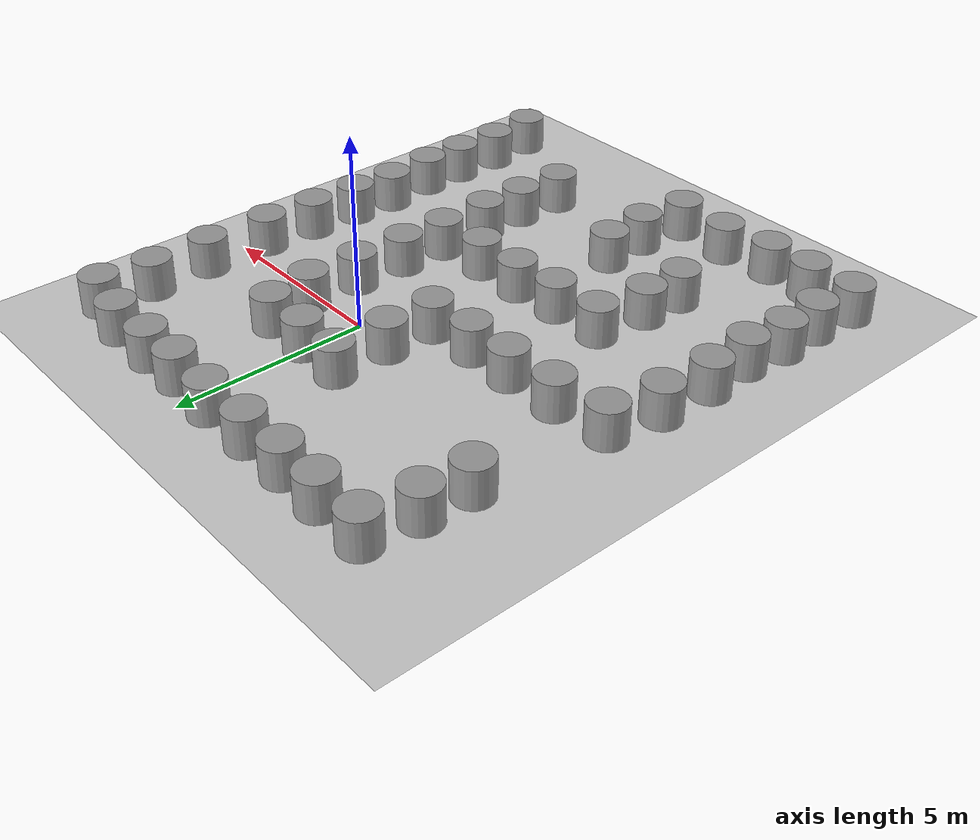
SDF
<sdf version="1.6">
 <world name="default">
  <light name="sun" type="directional">
   <pose>0 0 10 0 -0 0</pose>
   <diffuse>0.8 0.8 0.8 1</diffuse>
   <specular>0.2 0.2 0.2 1</specular>
   <attenuation>
    <range>1000</range>
    <constant>0.9</constant>
    <linear>0.01</linear>
    <quadratic>0.001</quadratic>
   </attenuation>
   <direction>-0.5 0.1 -0.9</direction>
  </light>
  <model name="ground_plane">
   <static>1</static>
   <link name="link">
    <collision name="collision">
     <geometry><plane><normal>0 0 1</normal><size>100 100</size></plane></geometry>
     <surface>
      <contact><collide_bitmask>65535</collide_bitmask></contact>
      <friction><ode><mu>100</mu><mu2>50</mu2></ode></friction>
     </surface>
    </collision>
    <visual name="visual">
     <cast_shadows>0</cast_shadows>
     <geometry><plane><normal>0 0 1</normal><size>100 100</size></plane></geometry>
     <material>
      <script><uri>file://media/materials/scripts/gazebo.material</uri><name>Gazebo/Grey</name></script>
     </material>
    </visual>
   </link>
  </model>
  <gravity>0 0 -9.8</gravity>
  <magnetic_field>6e-06 2.3e-05 -4.2e-05</magnetic_field>
  <atmosphere type="adiabatic"/>
  <physics name="default_physics" default="0" type="ode">
   <max_step_size>0.001</max_step_size>
   <real_time_factor>1</real_time_factor>
   <real_time_update_rate>1000</real_time_update_rate>
  </physics>
  <scene><ambient>0.4 0.4 0.4 1</ambient><background>0.7 0.7 0.7 1</background><shadows>1</shadows></scene>
  <spherical_coordinates>
   <surface_model>EARTH_WGS84</surface_model>
   <latitude_deg>0</latitude_deg>
   <longitude_deg>0</longitude_deg>
   <elevation>0</elevation>
   <heading_deg>0</heading_deg>
  </spherical_coordinates>
  <model name="unit_cylinder">
   <pose>0.013122 1.5859 0.499994 -4e-06 -2e-06 -0</pose>
   <link name="link">
    <inertial>
     <mass>1</mass>
     <inertia><ixx>0.145833</ixx><ixy>0</ixy><ixz>0</ixz><iyy>0.145833</iyy><iyz>0</iyz><izz>0.125</izz></inertia>
    </inertial>
    <collision name="collision">
     <geometry><cylinder><radius>0.5</radius><length>1</length></cylinder></geometry>
    </collision>
    <visual name="visual">
     <geometry><cylinder><radius>0.5</radius><length>1</length></cylinder></geometry>
     <material>
      <script><name>Gazebo/Grey</name><uri>file://media/materials/scripts/gazebo.material</uri></script>
     </material>
    </visual>
   </link>
  </model>
  <model name="unit_cylinder_clone">
   <pose>1.33938 1.56124 0.499997 4e-06 2e-06 -0</pose>
   <link name="link">
    <inertial>
     <mass>1</mass>
     <inertia><ixx>0.145833</ixx><ixy>0</ixy><ixz>0</ixz><iyy>0.145833</iyy><iyz>0</iyz><izz>0.125</izz></inertia>
    </inertial>
    <collision name="collision">
     <geometry><cylinder><radius>0.5</radius><length>1</length></cylinder></geometry>
    </collision>
    <visual name="visual">
     <geometry><cylinder><radius>0.5</radius><length>1</length></cylinder></geometry>
     <material>
      <script><name>Gazebo/Grey</name><uri>file://media/materials/scripts/gazebo.material</uri></script>
     </material>
    </visual>
   </link>
  </model>
  <model name="unit_cylinder_clone_0">
   <pose>1.59645 0.296493 0.499994 -4e-06 -3e-06 -0</pose>
   <link name="link">
    <inertial>
     <mass>1</mass>
     <inertia><ixx>0.145833</ixx><ixy>0</ixy><ixz>0</ixz><iyy>0.145833</iyy><iyz>0</iyz><izz>0.125</izz></inertia>
    </inertial>
    <collision name="collision">
     <geometry><cylinder><radius>0.5</radius><length>1</length></cylinder></geometry>
    </collision>
    <visual name="visual">
     <geometry><cylinder><radius>0.5</radius><length>1</length></cylinder></geometry>
     <material>
      <script><name>Gazebo/Grey</name><uri>file://media/materials/scripts/gazebo.material</uri></script>
     </material>
    </visual>
   </link>
  </model>
  <model name="unit_cylinder_clone_1">
   <pose>1.56847 -1.1375 0.499994 -4e-06 -3e-06 -0</pose>
   <link name="link">
    <inertial>
     <mass>1</mass>
     <inertia><ixx>0.145833</ixx><ixy>0</ixy><ixz>0</ixz><iyy>0.145833</iyy><iyz>0</iyz><izz>0.125</izz></inertia>
    </inertial>
    <collision name="collision">
     <geometry><cylinder><radius>0.5</radius><length>1</length></cylinder></geometry>
    </collision>
    <visual name="visual">
     <geometry><cylinder><radius>0.5</radius><length>1</length></cylinder></geometry>
     <material>
      <script><name>Gazebo/Grey</name><uri>file://media/materials/scripts/gazebo.material</uri></script>
     </material>
    </visual>
   </link>
  </model>
  <model name="unit_cylinder_0">
   <pose>-1.31347 1.63871 0.499997 4e-06 3e-06 -0</pose>
   <link name="link">
    <inertial>
     <mass>1</mass>
     <inertia><ixx>0.145833</ixx><ixy>0</ixy><ixz>0</ixz><iyy>0.145833</iyy><iyz>0</iyz><izz>0.125</izz></inertia>
    </inertial>
    <collision name="collision">
     <geometry><cylinder><radius>0.5</radius><length>1</length></cylinder></geometry>
    </collision>
    <visual name="visual">
     <geometry><cylinder><radius>0.5</radius><length>1</length></cylinder></geometry>
     <material>
      <script><name>Gazebo/Grey</name><uri>file://media/materials/scripts/gazebo.material</uri></script>
     </material>
    </visual>
   </link>
  </model>
  <model name="unit_cylinder_clone_2">
   <pose>-1.31862 0.155921 0.499997 4e-06 3e-06 -0</pose>
   <link name="link">
    <inertial>
     <mass>1</mass>
     <inertia><ixx>0.145833</ixx><ixy>0</ixy><ixz>0</ixz><iyy>0.145833</iyy><iyz>0</iyz><izz>0.125</izz></inertia>
    </inertial>
    <collision name="collision">
     <geometry><cylinder><radius>0.5</radius><length>1</length></cylinder></geometry>
    </collision>
    <visual name="visual">
     <geometry><cylinder><radius>0.5</radius><length>1</length></cylinder></geometry>
     <material>
      <script><name>Gazebo/Grey</name><uri>file://media/materials/scripts/gazebo.material</uri></script>
     </material>
    </visual>
   </link>
  </model>
  <model name="unit_cylinder_clone_3">
   <pose>-1.33686 -1.19292 0.499997 4e-06 3e-06 -0</pose>
   <link name="link">
    <inertial>
     <mass>1</mass>
     <inertia><ixx>0.145833</ixx><ixy>0</ixy><ixz>0</ixz><iyy>0.145833</iyy><iyz>0</iyz><izz>0.125</izz></inertia>
    </inertial>
    <collision name="collision">
     <geometry><cylinder><radius>0.5</radius><length>1</length></cylinder></geometry>
    </collision>
    <visual name="visual">
     <geometry><cylinder><radius>0.5</radius><length>1</length></cylinder></geometry>
     <material>
      <script><name>Gazebo/Grey</name><uri>file://media/materials/scripts/gazebo.material</uri></script>
     </material>
    </visual>
   </link>
  </model>
  <model name="unit_cylinder_clone_4">
   <pose>1.52941 -2.56095 0.499997 4e-06 3e-06 -0</pose>
   <link name="link">
    <inertial>
     <mass>1</mass>
     <inertia><ixx>0.145833</ixx><ixy>0</ixy><ixz>0</ixz><iyy>0.145833</iyy><iyz>0</iyz><izz>0.125</izz></inertia>
    </inertial>
    <collision name="collision">
     <geometry><cylinder><radius>0.5</radius><length>1</length></cylinder></geometry>
    </collision>
    <visual name="visual">
     <geometry><cylinder><radius>0.5</radius><length>1</length></cylinder></geometry>
     <material>
      <script><name>Gazebo/Grey</name><uri>file://media/materials/scripts/gazebo.material</uri></script>
     </material>
    </visual>
   </link>
  </model>
  <model name="unit_cylinder_clone_6">
   <pose>1.50835 -3.85641 0.499994 -3e-06 -2e-06 0</pose>
   <link name="link">
    <inertial>
     <mass>1</mass>
     <inertia><ixx>0.145833</ixx><ixy>0</ixy><ixz>0</ixz><iyy>0.145833</iyy><iyz>0</iyz><izz>0.125</izz></inertia>
    </inertial>
    <collision name="collision">
     <geometry><cylinder><radius>0.5</radius><length>1</length></cylinder></geometry>
    </collision>
    <visual name="visual">
     <geometry><cylinder><radius>0.5</radius><length>1</length></cylinder></geometry>
     <material>
      <script><name>Gazebo/Grey</name><uri>file://media/materials/scripts/gazebo.material</uri></script>
     </material>
    </visual>
   </link>
  </model>
  <model name="unit_cylinder_clone_7">
   <pose>0.099074 -3.94267 0.499994 -4e-06 -3e-06 -0</pose>
   <link name="link">
    <inertial>
     <mass>1</mass>
     <inertia><ixx>0.145833</ixx><ixy>0</ixy><ixz>0</ixz><iyy>0.145833</iyy><iyz>0</iyz><izz>0.125</izz></inertia>
    </inertial>
    <collision name="collision">
     <geometry><cylinder><radius>0.5</radius><length>1</length></cylinder></geometry>
    </collision>
    <visual name="visual">
     <geometry><cylinder><radius>0.5</radius><length>1</length></cylinder></geometry>
     <material>
      <script><name>Gazebo/Grey</name><uri>file://media/materials/scripts/gazebo.material</uri></script>
     </material>
    </visual>
   </link>
  </model>
  <model name="unit_cylinder_clone_8">
   <pose>-1.2734 -3.91145 0.499997 4e-06 2e-06 -0</pose>
   <link name="link">
    <inertial>
     <mass>1</mass>
     <inertia><ixx>0.145833</ixx><ixy>0</ixy><ixz>0</ixz><iyy>0.145833</iyy><iyz>0</iyz><izz>0.125</izz></inertia>
    </inertial>
    <collision name="collision">
     <geometry><cylinder><radius>0.5</radius><length>1</length></cylinder></geometry>
    </collision>
    <visual name="visual">
     <geometry><cylinder><radius>0.5</radius><length>1</length></cylinder></geometry>
     <material>
      <script><name>Gazebo/Grey</name><uri>file://media/materials/scripts/gazebo.material</uri></script>
     </material>
    </visual>
   </link>
  </model>
  <model name="unit_cylinder_clone_5">
   <pose>-2.6685 -1.24733 0.499997 4e-06 3e-06 -0</pose>
   <link name="link">
    <inertial>
     <mass>1</mass>
     <inertia><ixx>0.145833</ixx><ixy>0</ixy><ixz>0</ixz><iyy>0.145833</iyy><iyz>0</iyz><izz>0.125</izz></inertia>
    </inertial>
    <collision name="collision">
     <geometry><cylinder><radius>0.5</radius><length>1</length></cylinder></geometry>
    </collision>
    <visual name="visual">
     <geometry><cylinder><radius>0.5</radius><length>1</length></cylinder></geometry>
     <material>
      <script><name>Gazebo/Grey</name><uri>file://media/materials/scripts/gazebo.material</uri></script>
     </material>
    </visual>
   </link>
  </model>
  <model name="unit_cylinder_clone_9">
   <pose>-3.97726 -1.2243 0.499997 4e-06 3e-06 -0</pose>
   <link name="link">
    <inertial>
     <mass>1</mass>
     <inertia><ixx>0.145833</ixx><ixy>0</ixy><ixz>0</ixz><iyy>0.145833</iyy><iyz>0</iyz><izz>0.125</izz></inertia>
    </inertial>
    <collision name="collision">
     <geometry><cylinder><radius>0.5</radius><length>1</length></cylinder></geometry>
    </collision>
    <visual name="visual">
     <geometry><cylinder><radius>0.5</radius><length>1</length></cylinder></geometry>
     <material>
      <script><name>Gazebo/Grey</name><uri>file://media/materials/scripts/gazebo.material</uri></script>
     </material>
    </visual>
   </link>
  </model>
  <model name="unit_cylinder_clone_10">
   <pose>-2.57858 -3.97879 0.499994 -4e-06 -3e-06 -0</pose>
   <link name="link">
    <inertial>
     <mass>1</mass>
     <inertia><ixx>0.145833</ixx><ixy>0</ixy><ixz>0</ixz><iyy>0.145833</iyy><iyz>0</iyz><izz>0.125</izz></inertia>
    </inertial>
    <collision name="collision">
     <geometry><cylinder><radius>0.5</radius><length>1</length></cylinder></geometry>
    </collision>
    <visual name="visual">
     <geometry><cylinder><radius>0.5</radius><length>1</length></cylinder></geometry>
     <material>
      <script><name>Gazebo/Grey</name><uri>file://media/materials/scripts/gazebo.material</uri></script>
     </material>
    </visual>
   </link>
  </model>
  <model name="unit_cylinder_clone_11">
   <pose>-3.98822 -3.99699 0.499994 -4e-06 -3e-06 -0</pose>
   <link name="link">
    <inertial>
     <mass>1</mass>
     <inertia><ixx>0.145833</ixx><ixy>0</ixy><ixz>0</ixz><iyy>0.145833</iyy><iyz>0</iyz><izz>0.125</izz></inertia>
    </inertial>
    <collision name="collision">
     <geometry><cylinder><radius>0.5</radius><length>1</length></cylinder></geometry>
    </collision>
    <visual name="visual">
     <geometry><cylinder><radius>0.5</radius><length>1</length></cylinder></geometry>
     <material>
      <script><name>Gazebo/Grey</name><uri>file://media/materials/scripts/gazebo.material</uri></script>
     </material>
    </visual>
   </link>
  </model>
  <model name="unit_cylinder_clone_12">
   <pose>-5.44553 -1.23441 0.499996 4e-06 3e-06 -0</pose>
   <link name="link">
    <inertial>
     <mass>1</mass>
     <inertia><ixx>0.145833</ixx><ixy>0</ixy><ixz>0</ixz><iyy>0.145833</iyy><iyz>0</iyz><izz>0.125</izz></inertia>
    </inertial>
    <collision name="collision">
     <geometry><cylinder><radius>0.5</radius><length>1</length></cylinder></geometry>
    </collision>
    <visual name="visual">
     <geometry><cylinder><radius>0.5</radius><length>1</length></cylinder></geometry>
     <material>
      <script><name>Gazebo/Grey</name><uri>file://media/materials/scripts/gazebo.material</uri></script>
     </material>
    </visual>
   </link>
  </model>
  <model name="unit_cylinder_clone_13">
   <pose>-6.90864 -1.39377 0.499994 -4e-06 -3e-06 -0</pose>
   <link name="link">
    <inertial>
     <mass>1</mass>
     <inertia><ixx>0.145833</ixx><ixy>0</ixy><ixz>0</ixz><iyy>0.145833</iyy><iyz>0</iyz><izz>0.125</izz></inertia>
    </inertial>
    <collision name="collision">
     <geometry><cylinder><radius>0.5</radius><length>1</length></cylinder></geometry>
    </collision>
    <visual name="visual">
     <geometry><cylinder><radius>0.5</radius><length>1</length></cylinder></geometry>
     <material>
      <script><name>Gazebo/Grey</name><uri>file://media/materials/scripts/gazebo.material</uri></script>
     </material>
    </visual>
   </link>
  </model>
  <model name="unit_cylinder_clone_14">
   <pose>-7.16753 -2.81012 0.499997 4e-06 3e-06 -0</pose>
   <link name="link">
    <inertial>
     <mass>1</mass>
     <inertia><ixx>0.145833</ixx><ixy>0</ixy><ixz>0</ixz><iyy>0.145833</iyy><iyz>0</iyz><izz>0.125</izz></inertia>
    </inertial>
    <collision name="collision">
     <geometry><cylinder><radius>0.5</radius><length>1</length></cylinder></geometry>
    </collision>
    <visual name="visual">
     <geometry><cylinder><radius>0.5</radius><length>1</length></cylinder></geometry>
     <material>
      <script><name>Gazebo/Grey</name><uri>file://media/materials/scripts/gazebo.material</uri></script>
     </material>
    </visual>
   </link>
  </model>
  <model name="unit_cylinder_clone_15">
   <pose>-7.22439 -4.30707 0.499992 -3e-06 2e-06 0</pose>
   <link name="link">
    <inertial>
     <mass>1</mass>
     <inertia><ixx>0.145833</ixx><ixy>0</ixy><ixz>0</ixz><iyy>0.145833</iyy><iyz>0</iyz><izz>0.125</izz></inertia>
    </inertial>
    <collision name="collision">
     <geometry><cylinder><radius>0.5</radius><length>1</length></cylinder></geometry>
    </collision>
    <visual name="visual">
     <geometry><cylinder><radius>0.5</radius><length>1</length></cylinder></geometry>
     <material>
      <script><name>Gazebo/Grey</name><uri>file://media/materials/scripts/gazebo.material</uri></script>
     </material>
    </visual>
   </link>
  </model>
  <model name="unit_cylinder_clone_16">
   <pose>-7.14468 -5.60982 0.499994 -4e-06 -3e-06 -0</pose>
   <link name="link">
    <inertial>
     <mass>1</mass>
     <inertia><ixx>0.145833</ixx><ixy>0</ixy><ixz>0</ixz><iyy>0.145833</iyy><iyz>0</iyz><izz>0.125</izz></inertia>
    </inertial>
    <collision name="collision">
     <geometry><cylinder><radius>0.5</radius><length>1</length></cylinder></geometry>
    </collision>
    <visual name="visual">
     <geometry><cylinder><radius>0.5</radius><length>1</length></cylinder></geometry>
     <material>
      <script><name>Gazebo/Grey</name><uri>file://media/materials/scripts/gazebo.material</uri></script>
     </material>
    </visual>
   </link>
  </model>
  <model name="unit_cylinder_clone_17">
   <pose>-4.17526 -5.42568 0.499992 -3e-06 2e-06 0</pose>
   <link name="link">
    <inertial>
     <mass>1</mass>
     <inertia><ixx>0.145833</ixx><ixy>0</ixy><ixz>0</ixz><iyy>0.145833</iyy><iyz>0</iyz><izz>0.125</izz></inertia>
    </inertial>
    <collision name="collision">
     <geometry><cylinder><radius>0.5</radius><length>1</length></cylinder></geometry>
    </collision>
    <visual name="visual">
     <geometry><cylinder><radius>0.5</radius><length>1</length></cylinder></geometry>
     <material>
      <script><name>Gazebo/Grey</name><uri>file://media/materials/scripts/gazebo.material</uri></script>
     </material>
    </visual>
   </link>
  </model>
  <model name="unit_cylinder_clone_18">
   <pose>-4.18701 -6.61193 0.499992 -3e-06 2e-06 0</pose>
   <link name="link">
    <inertial>
     <mass>1</mass>
     <inertia><ixx>0.145833</ixx><ixy>0</ixy><ixz>0</ixz><iyy>0.145833</iyy><iyz>0</iyz><izz>0.125</izz></inertia>
    </inertial>
    <collision name="collision">
     <geometry><cylinder><radius>0.5</radius><length>1</length></cylinder></geometry>
    </collision>
    <visual name="visual">
     <geometry><cylinder><radius>0.5</radius><length>1</length></cylinder></geometry>
     <material>
      <script><name>Gazebo/Grey</name><uri>file://media/materials/scripts/gazebo.material</uri></script>
     </material>
    </visual>
   </link>
  </model>
  <model name="unit_cylinder_clone_19">
   <pose>-7.27647 -6.78814 0.499992 -3e-06 2e-06 0</pose>
   <link name="link">
    <inertial>
     <mass>1</mass>
     <inertia><ixx>0.145833</ixx><ixy>0</ixy><ixz>0</ixz><iyy>0.145833</iyy><iyz>0</iyz><izz>0.125</izz></inertia>
    </inertial>
    <collision name="collision">
     <geometry><cylinder><radius>0.5</radius><length>1</length></cylinder></geometry>
    </collision>
    <visual name="visual">
     <geometry><cylinder><radius>0.5</radius><length>1</length></cylinder></geometry>
     <material>
      <script><name>Gazebo/Grey</name><uri>file://media/materials/scripts/gazebo.material</uri></script>
     </material>
    </visual>
   </link>
  </model>
  <model name="unit_cylinder_clone_20">
   <pose>-7.24244 -7.96716 0.499992 -3e-06 2e-06 0</pose>
   <link name="link">
    <inertial>
     <mass>1</mass>
     <inertia><ixx>0.145833</ixx><ixy>0</ixy><ixz>0</ixz><iyy>0.145833</iyy><iyz>0</iyz><izz>0.125</izz></inertia>
    </inertial>
    <collision name="collision">
     <geometry><cylinder><radius>0.5</radius><length>1</length></cylinder></geometry>
    </collision>
    <visual name="visual">
     <geometry><cylinder><radius>0.5</radius><length>1</length></cylinder></geometry>
     <material>
      <script><name>Gazebo/Grey</name><uri>file://media/materials/scripts/gazebo.material</uri></script>
     </material>
    </visual>
   </link>
  </model>
  <model name="unit_cylinder_clone_21">
   <pose>-7.33476 -9.26466 0.499998 3e-06 -2e-06 0</pose>
   <link name="link">
    <inertial>
     <mass>1</mass>
     <inertia><ixx>0.145833</ixx><ixy>0</ixy><ixz>0</ixz><iyy>0.145833</iyy><iyz>0</iyz><izz>0.125</izz></inertia>
    </inertial>
    <collision name="collision">
     <geometry><cylinder><radius>0.5</radius><length>1</length></cylinder></geometry>
    </collision>
    <visual name="visual">
     <geometry><cylinder><radius>0.5</radius><length>1</length></cylinder></geometry>
     <material>
      <script><name>Gazebo/Grey</name><uri>file://media/materials/scripts/gazebo.material</uri></script>
     </material>
    </visual>
   </link>
  </model>
  <model name="unit_cylinder_clone_22">
   <pose>-6.00809 -9.29478 0.499992 -3e-06 3e-06 0</pose>
   <link name="link">
    <inertial>
     <mass>1</mass>
     <inertia><ixx>0.145833</ixx><ixy>0</ixy><ixz>0</ixz><iyy>0.145833</iyy><iyz>0</iyz><izz>0.125</izz></inertia>
    </inertial>
    <collision name="collision">
     <geometry><cylinder><radius>0.5</radius><length>1</length></cylinder></geometry>
    </collision>
    <visual name="visual">
     <geometry><cylinder><radius>0.5</radius><length>1</length></cylinder></geometry>
     <material>
      <script><name>Gazebo/Grey</name><uri>file://media/materials/scripts/gazebo.material</uri></script>
     </material>
    </visual>
   </link>
  </model>
  <model name="unit_cylinder_clone_23">
   <pose>-4.75218 -9.32902 0.499993 -3e-06 2e-06 0</pose>
   <link name="link">
    <inertial>
     <mass>1</mass>
     <inertia><ixx>0.145833</ixx><ixy>0</ixy><ixz>0</ixz><iyy>0.145833</iyy><iyz>0</iyz><izz>0.125</izz></inertia>
    </inertial>
    <collision name="collision">
     <geometry><cylinder><radius>0.5</radius><length>1</length></cylinder></geometry>
    </collision>
    <visual name="visual">
     <geometry><cylinder><radius>0.5</radius><length>1</length></cylinder></geometry>
     <material>
      <script><name>Gazebo/Grey</name><uri>file://media/materials/scripts/gazebo.material</uri></script>
     </material>
    </visual>
   </link>
  </model>
  <model name="unit_cylinder_clone_24">
   <pose>-3.35719 -9.19414 0.499998 3e-06 -3e-06 0</pose>
   <link name="link">
    <inertial>
     <mass>1</mass>
     <inertia><ixx>0.145833</ixx><ixy>0</ixy><ixz>0</ixz><iyy>0.145833</iyy><iyz>0</iyz><izz>0.125</izz></inertia>
    </inertial>
    <collision name="collision">
     <geometry><cylinder><radius>0.5</radius><length>1</length></cylinder></geometry>
    </collision>
    <visual name="visual">
     <geometry><cylinder><radius>0.5</radius><length>1</length></cylinder></geometry>
     <material>
      <script><name>Gazebo/Grey</name><uri>file://media/materials/scripts/gazebo.material</uri></script>
     </material>
    </visual>
   </link>
  </model>
  <model name="unit_cylinder_clone_25">
   <pose>-1.82612 -9.31637 0.499993 -3e-06 2e-06 0</pose>
   <link name="link">
    <inertial>
     <mass>1</mass>
     <inertia><ixx>0.145833</ixx><ixy>0</ixy><ixz>0</ixz><iyy>0.145833</iyy><iyz>0</iyz><izz>0.125</izz></inertia>
    </inertial>
    <collision name="collision">
     <geometry><cylinder><radius>0.5</radius><length>1</length></cylinder></geometry>
    </collision>
    <visual name="visual">
     <geometry><cylinder><radius>0.5</radius><length>1</length></cylinder></geometry>
     <material>
      <script><name>Gazebo/Grey</name><uri>file://media/materials/scripts/gazebo.material</uri></script>
     </material>
    </visual>
   </link>
  </model>
  <model name="unit_cylinder_clone_26">
   <pose>-1.65088 -7.94262 0.499992 -3e-06 4e-06 0</pose>
   <link name="link">
    <inertial>
     <mass>1</mass>
     <inertia><ixx>0.145833</ixx><ixy>0</ixy><ixz>0</ixz><iyy>0.145833</iyy><iyz>0</iyz><izz>0.125</izz></inertia>
    </inertial>
    <collision name="collision">
     <geometry><cylinder><radius>0.5</radius><length>1</length></cylinder></geometry>
    </collision>
    <visual name="visual">
     <geometry><cylinder><radius>0.5</radius><length>1</length></cylinder></geometry>
     <material>
      <script><name>Gazebo/Grey</name><uri>file://media/materials/scripts/gazebo.material</uri></script>
     </material>
    </visual>
   </link>
  </model>
  <model name="unit_cylinder_clone_27">
   <pose>-1.72859 -6.65036 0.499994 3e-06 -2e-06 0</pose>
   <link name="link">
    <inertial>
     <mass>1</mass>
     <inertia><ixx>0.145833</ixx><ixy>0</ixy><ixz>0</ixz><iyy>0.145833</iyy><iyz>0</iyz><izz>0.125</izz></inertia>
    </inertial>
    <collision name="collision">
     <geometry><cylinder><radius>0.5</radius><length>1</length></cylinder></geometry>
    </collision>
    <visual name="visual">
     <geometry><cylinder><radius>0.5</radius><length>1</length></cylinder></geometry>
     <material>
      <script><name>Gazebo/Grey</name><uri>file://media/materials/scripts/gazebo.material</uri></script>
     </material>
    </visual>
   </link>
  </model>
  <model name="unit_cylinder_clone_28">
   <pose>1.55156 -5.31341 0.499992 -3e-06 3e-06 0</pose>
   <link name="link">
    <inertial>
     <mass>1</mass>
     <inertia><ixx>0.145833</ixx><ixy>0</ixy><ixz>0</ixz><iyy>0.145833</iyy><iyz>0</iyz><izz>0.125</izz></inertia>
    </inertial>
    <collision name="collision">
     <geometry><cylinder><radius>0.5</radius><length>1</length></cylinder></geometry>
    </collision>
    <visual name="visual">
     <geometry><cylinder><radius>0.5</radius><length>1</length></cylinder></geometry>
     <material>
      <script><name>Gazebo/Grey</name><uri>file://media/materials/scripts/gazebo.material</uri></script>
     </material>
    </visual>
   </link>
  </model>
  <model name="unit_cylinder_clone_29">
   <pose>1.53779 -6.56539 0.499998 3e-06 -3e-06 0</pose>
   <link name="link">
    <inertial>
     <mass>1</mass>
     <inertia><ixx>0.145833</ixx><ixy>0</ixy><ixz>0</ixz><iyy>0.145833</iyy><iyz>0</iyz><izz>0.125</izz></inertia>
    </inertial>
    <collision name="collision">
     <geometry><cylinder><radius>0.5</radius><length>1</length></cylinder></geometry>
    </collision>
    <visual name="visual">
     <geometry><cylinder><radius>0.5</radius><length>1</length></cylinder></geometry>
     <material>
      <script><name>Gazebo/Grey</name><uri>file://media/materials/scripts/gazebo.material</uri></script>
     </material>
    </visual>
   </link>
  </model>
  <model name="unit_cylinder_clone_30">
   <pose>1.4704 -7.87611 0.499992 -3e-06 3e-06 0</pose>
   <link name="link">
    <inertial>
     <mass>1</mass>
     <inertia><ixx>0.145833</ixx><ixy>0</ixy><ixz>0</ixz><iyy>0.145833</iyy><iyz>0</iyz><izz>0.125</izz></inertia>
    </inertial>
    <collision name="collision">
     <geometry><cylinder><radius>0.5</radius><length>1</length></cylinder></geometry>
    </collision>
    <visual name="visual">
     <geometry><cylinder><radius>0.5</radius><length>1</length></cylinder></geometry>
     <material>
      <script><name>Gazebo/Grey</name><uri>file://media/materials/scripts/gazebo.material</uri></script>
     </material>
    </visual>
   </link>
  </model>
  <model name="unit_cylinder_clone_31">
   <pose>4.722 -9.66442 0.499998 3e-06 -3e-06 0</pose>
   <link name="link">
    <inertial>
     <mass>1</mass>
     <inertia><ixx>0.145833</ixx><ixy>0</ixy><ixz>0</ixz><iyy>0.145833</iyy><iyz>0</iyz><izz>0.125</izz></inertia>
    </inertial>
    <collision name="collision">
     <geometry><cylinder><radius>0.5</radius><length>1</length></cylinder></geometry>
    </collision>
    <visual name="visual">
     <geometry><cylinder><radius>0.5</radius><length>1</length></cylinder></geometry>
     <material>
      <script><name>Gazebo/Grey</name><uri>file://media/materials/scripts/gazebo.material</uri></script>
     </material>
    </visual>
   </link>
  </model>
  <model name="unit_cylinder_clone_32">
   <pose>4.59805 -8.30922 0.499992 -3e-06 3e-06 0</pose>
   <link name="link">
    <inertial>
     <mass>1</mass>
     <inertia><ixx>0.145833</ixx><ixy>0</ixy><ixz>0</ixz><iyy>0.145833</iyy><iyz>0</iyz><izz>0.125</izz></inertia>
    </inertial>
    <collision name="collision">
     <geometry><cylinder><radius>0.5</radius><length>1</length></cylinder></geometry>
    </collision>
    <visual name="visual">
     <geometry><cylinder><radius>0.5</radius><length>1</length></cylinder></geometry>
     <material>
      <script><name>Gazebo/Grey</name><uri>file://media/materials/scripts/gazebo.material</uri></script>
     </material>
    </visual>
   </link>
  </model>
  <model name="unit_cylinder_clone_33">
   <pose>4.61074 -7.01168 0.499998 3e-06 -4e-06 0</pose>
   <link name="link">
    <inertial>
     <mass>1</mass>
     <inertia><ixx>0.145833</ixx><ixy>0</ixy><ixz>0</ixz><iyy>0.145833</iyy><iyz>0</iyz><izz>0.125</izz></inertia>
    </inertial>
    <collision name="collision">
     <geometry><cylinder><radius>0.5</radius><length>1</length></cylinder></geometry>
    </collision>
    <visual name="visual">
     <geometry><cylinder><radius>0.5</radius><length>1</length></cylinder></geometry>
     <material>
      <script><name>Gazebo/Grey</name><uri>file://media/materials/scripts/gazebo.material</uri></script>
     </material>
    </visual>
   </link>
  </model>
  <model name="unit_cylinder_clone_34">
   <pose>4.60893 -5.82572 0.499992 -3e-06 4e-06 0</pose>
   <link name="link">
    <inertial>
     <mass>1</mass>
     <inertia><ixx>0.145833</ixx><ixy>0</ixy><ixz>0</ixz><iyy>0.145833</iyy><iyz>0</iyz><izz>0.125</izz></inertia>
    </inertial>
    <collision name="collision">
     <geometry><cylinder><radius>0.5</radius><length>1</length></cylinder></geometry>
    </collision>
    <visual name="visual">
     <geometry><cylinder><radius>0.5</radius><length>1</length></cylinder></geometry>
     <material>
      <script><name>Gazebo/Grey</name><uri>file://media/materials/scripts/gazebo.material</uri></script>
     </material>
    </visual>
   </link>
  </model>
  <model name="unit_cylinder_clone_35">
   <pose>4.48127 -4.47779 0.499996 4e-06 3e-06 -0</pose>
   <link name="link">
    <inertial>
     <mass>1</mass>
     <inertia><ixx>0.145833</ixx><ixy>0</ixy><ixz>0</ixz><iyy>0.145833</iyy><iyz>0</iyz><izz>0.125</izz></inertia>
    </inertial>
    <collision name="collision">
     <geometry><cylinder><radius>0.5</radius><length>1</length></cylinder></geometry>
    </collision>
    <visual name="visual">
     <geometry><cylinder><radius>0.5</radius><length>1</length></cylinder></geometry>
     <material>
      <script><name>Gazebo/Grey</name><uri>file://media/materials/scripts/gazebo.material</uri></script>
     </material>
    </visual>
   </link>
  </model>
  <model name="unit_cylinder_clone_36">
   <pose>4.53545 -3.26479 0.499998 3e-06 -4e-06 0</pose>
   <link name="link">
    <inertial>
     <mass>1</mass>
     <inertia><ixx>0.145833</ixx><ixy>0</ixy><ixz>0</ixz><iyy>0.145833</iyy><iyz>0</iyz><izz>0.125</izz></inertia>
    </inertial>
    <collision name="collision">
     <geometry><cylinder><radius>0.5</radius><length>1</length></cylinder></geometry>
    </collision>
    <visual name="visual">
     <geometry><cylinder><radius>0.5</radius><length>1</length></cylinder></geometry>
     <material>
      <script><name>Gazebo/Grey</name><uri>file://media/materials/scripts/gazebo.material</uri></script>
     </material>
    </visual>
   </link>
  </model>
  <model name="unit_cylinder_clone_37">
   <pose>4.59552 -1.94297 0.499997 4e-06 3e-06 -0</pose>
   <link name="link">
    <inertial>
     <mass>1</mass>
     <inertia><ixx>0.145833</ixx><ixy>0</ixy><ixz>0</ixz><iyy>0.145833</iyy><iyz>0</iyz><izz>0.125</izz></inertia>
    </inertial>
    <collision name="collision">
     <geometry><cylinder><radius>0.5</radius><length>1</length></cylinder></geometry>
    </collision>
    <visual name="visual">
     <geometry><cylinder><radius>0.5</radius><length>1</length></cylinder></geometry>
     <material>
      <script><name>Gazebo/Grey</name><uri>file://media/materials/scripts/gazebo.material</uri></script>
     </material>
    </visual>
   </link>
  </model>
  <model name="unit_cylinder_clone_38">
   <pose>4.66061 -0.522804 0.499998 3e-06 -4e-06 0</pose>
   <link name="link">
    <inertial>
     <mass>1</mass>
     <inertia><ixx>0.145833</ixx><ixy>0</ixy><ixz>0</ixz><iyy>0.145833</iyy><iyz>0</iyz><izz>0.125</izz></inertia>
    </inertial>
    <collision name="collision">
     <geometry><cylinder><radius>0.5</radius><length>1</length></cylinder></geometry>
    </collision>
    <visual name="visual">
     <geometry><cylinder><radius>0.5</radius><length>1</length></cylinder></geometry>
     <material>
      <script><name>Gazebo/Grey</name><uri>file://media/materials/scripts/gazebo.material</uri></script>
     </material>
    </visual>
   </link>
  </model>
  <model name="unit_cylinder_clone_39">
   <pose>4.6732 1.24542 0.499994 -4e-06 -2e-06 -0</pose>
   <link name="link">
    <inertial>
     <mass>1</mass>
     <inertia><ixx>0.145833</ixx><ixy>0</ixy><ixz>0</ixz><iyy>0.145833</iyy><iyz>0</iyz><izz>0.125</izz></inertia>
    </inertial>
    <collision name="collision">
     <geometry><cylinder><radius>0.5</radius><length>1</length></cylinder></geometry>
    </collision>
    <visual name="visual">
     <geometry><cylinder><radius>0.5</radius><length>1</length></cylinder></geometry>
     <material>
      <script><name>Gazebo/Grey</name><uri>file://media/materials/scripts/gazebo.material</uri></script>
     </material>
    </visual>
   </link>
  </model>
  <model name="unit_cylinder_clone_39_clone">
   <pose>4.60632 2.86478 0.499992 -3e-06 -4e-06 -0</pose>
   <link name="link">
    <inertial>
     <mass>1</mass>
     <inertia><ixx>0.145833</ixx><ixy>0</ixy><ixz>0</ixz><iyy>0.145833</iyy><iyz>0</iyz><izz>0.125</izz></inertia>
    </inertial>
    <collision name="collision">
     <geometry><cylinder><radius>0.5</radius><length>1</length></cylinder></geometry>
    </collision>
    <visual name="visual">
     <geometry><cylinder><radius>0.5</radius><length>1</length></cylinder></geometry>
     <material>
      <script><name>Gazebo/Grey</name><uri>file://media/materials/scripts/gazebo.material</uri></script>
     </material>
    </visual>
   </link>
  </model>
  <model name="unit_cylinder_clone_39_clone_0">
   <pose>4.72557 4.24841 0.499992 -3e-06 -4e-06 -0</pose>
   <link name="link">
    <inertial>
     <mass>1</mass>
     <inertia><ixx>0.145833</ixx><ixy>0</ixy><ixz>0</ixz><iyy>0.145833</iyy><iyz>0</iyz><izz>0.125</izz></inertia>
    </inertial>
    <collision name="collision">
     <geometry><cylinder><radius>0.5</radius><length>1</length></cylinder></geometry>
    </collision>
    <visual name="visual">
     <geometry><cylinder><radius>0.5</radius><length>1</length></cylinder></geometry>
     <material>
      <script><name>Gazebo/Grey</name><uri>file://media/materials/scripts/gazebo.material</uri></script>
     </material>
    </visual>
   </link>
  </model>
  <model name="unit_cylinder_clone_39_clone_1">
   <pose>3.39558 4.50638 0.499998 3e-06 4e-06 -0</pose>
   <link name="link">
    <inertial>
     <mass>1</mass>
     <inertia><ixx>0.145833</ixx><ixy>0</ixy><ixz>0</ixz><iyy>0.145833</iyy><iyz>0</iyz><izz>0.125</izz></inertia>
    </inertial>
    <collision name="collision">
     <geometry><cylinder><radius>0.5</radius><length>1</length></cylinder></geometry>
    </collision>
    <visual name="visual">
     <geometry><cylinder><radius>0.5</radius><length>1</length></cylinder></geometry>
     <material>
      <script><name>Gazebo/Grey</name><uri>file://media/materials/scripts/gazebo.material</uri></script>
     </material>
    </visual>
   </link>
  </model>
  <model name="unit_cylinder_clone_39_clone_2">
   <pose>1.9612 4.51633 0.499992 -3e-06 -4e-06 -0</pose>
   <link name="link">
    <inertial>
     <mass>1</mass>
     <inertia><ixx>0.145833</ixx><ixy>0</ixy><ixz>0</ixz><iyy>0.145833</iyy><iyz>0</iyz><izz>0.125</izz></inertia>
    </inertial>
    <collision name="collision">
     <geometry><cylinder><radius>0.5</radius><length>1</length></cylinder></geometry>
    </collision>
    <visual name="visual">
     <geometry><cylinder><radius>0.5</radius><length>1</length></cylinder></geometry>
     <material>
      <script><name>Gazebo/Grey</name><uri>file://media/materials/scripts/gazebo.material</uri></script>
     </material>
    </visual>
   </link>
  </model>
  <model name="unit_cylinder_clone_39_clone_3">
   <pose>0.761364 4.49164 0.499992 -4e-06 -4e-06 -0</pose>
   <link name="link">
    <inertial>
     <mass>1</mass>
     <inertia><ixx>0.145833</ixx><ixy>0</ixy><ixz>0</ixz><iyy>0.145833</iyy><iyz>0</iyz><izz>0.125</izz></inertia>
    </inertial>
    <collision name="collision">
     <geometry><cylinder><radius>0.5</radius><length>1</length></cylinder></geometry>
    </collision>
    <visual name="visual">
     <geometry><cylinder><radius>0.5</radius><length>1</length></cylinder></geometry>
     <material>
      <script><name>Gazebo/Grey</name><uri>file://media/materials/scripts/gazebo.material</uri></script>
     </material>
    </visual>
   </link>
  </model>
  <model name="unit_cylinder_clone_39_clone_4">
   <pose>-0.67562 4.56824 0.499997 3e-06 3e-06 0</pose>
   <link name="link">
    <inertial>
     <mass>1</mass>
     <inertia><ixx>0.145833</ixx><ixy>0</ixy><ixz>0</ixz><iyy>0.145833</iyy><iyz>0</iyz><izz>0.125</izz></inertia>
    </inertial>
    <collision name="collision">
     <geometry><cylinder><radius>0.5</radius><length>1</length></cylinder></geometry>
    </collision>
    <visual name="visual">
     <geometry><cylinder><radius>0.5</radius><length>1</length></cylinder></geometry>
     <material>
      <script><name>Gazebo/Grey</name><uri>file://media/materials/scripts/gazebo.material</uri></script>
     </material>
    </visual>
   </link>
  </model>
  <model name="unit_cylinder_clone_39_clone_5">
   <pose>-2.16651 4.55132 0.499993 -3e-06 -3e-06 0</pose>
   <link name="link">
    <inertial>
     <mass>1</mass>
     <inertia><ixx>0.145833</ixx><ixy>0</ixy><ixz>0</ixz><iyy>0.145833</iyy><iyz>0</iyz><izz>0.125</izz></inertia>
    </inertial>
    <collision name="collision">
     <geometry><cylinder><radius>0.5</radius><length>1</length></cylinder></geometry>
    </collision>
    <visual name="visual">
     <geometry><cylinder><radius>0.5</radius><length>1</length></cylinder></geometry>
     <material>
      <script><name>Gazebo/Grey</name><uri>file://media/materials/scripts/gazebo.material</uri></script>
     </material>
    </visual>
   </link>
  </model>
  <model name="unit_cylinder_clone_39_clone_6">
   <pose>-3.52687 4.55203 0.499993 -3e-06 -3e-06 0</pose>
   <link name="link">
    <inertial>
     <mass>1</mass>
     <inertia><ixx>0.145833</ixx><ixy>0</ixy><ixz>0</ixz><iyy>0.145833</iyy><iyz>0</iyz><izz>0.125</izz></inertia>
    </inertial>
    <collision name="collision">
     <geometry><cylinder><radius>0.5</radius><length>1</length></cylinder></geometry>
    </collision>
    <visual name="visual">
     <geometry><cylinder><radius>0.5</radius><length>1</length></cylinder></geometry>
     <material>
      <script><name>Gazebo/Grey</name><uri>file://media/materials/scripts/gazebo.material</uri></script>
     </material>
    </visual>
   </link>
  </model>
  <model name="unit_cylinder_clone_39_clone_7">
   <pose>-4.8193 4.58458 0.499993 -3e-06 -3e-06 0</pose>
   <link name="link">
    <inertial>
     <mass>1</mass>
     <inertia><ixx>0.145833</ixx><ixy>0</ixy><ixz>0</ixz><iyy>0.145833</iyy><iyz>0</iyz><izz>0.125</izz></inertia>
    </inertial>
    <collision name="collision">
     <geometry><cylinder><radius>0.5</radius><length>1</length></cylinder></geometry>
    </collision>
    <visual name="visual">
     <geometry><cylinder><radius>0.5</radius><length>1</length></cylinder></geometry>
     <material>
      <script><name>Gazebo/Grey</name><uri>file://media/materials/scripts/gazebo.material</uri></script>
     </material>
    </visual>
   </link>
  </model>
  <model name="unit_cylinder_clone_39_clone_6_clone_1">
   <pose>-6.23645 4.60243 0.499997 3e-06 4e-06 -0</pose>
   <link name="link">
    <inertial>
     <mass>1</mass>
     <inertia><ixx>0.145833</ixx><ixy>0</ixy><ixz>0</ixz><iyy>0.145833</iyy><iyz>0</iyz><izz>0.125</izz></inertia>
    </inertial>
    <collision name="collision">
     <geometry><cylinder><radius>0.5</radius><length>1</length></cylinder></geometry>
    </collision>
    <visual name="visual">
     <geometry><cylinder><radius>0.5</radius><length>1</length></cylinder></geometry>
     <material>
      <script><name>Gazebo/Grey</name><uri>file://media/materials/scripts/gazebo.material</uri></script>
     </material>
    </visual>
   </link>
  </model>
  <model name="unit_cylinder_clone_39_clone_6_clone_2">
   <pose>-6.4373 3.25424 0.499997 3e-06 4e-06 -0</pose>
   <link name="link">
    <inertial>
     <mass>1</mass>
     <inertia><ixx>0.145833</ixx><ixy>0</ixy><ixz>0</ixz><iyy>0.145833</iyy><iyz>0</iyz><izz>0.125</izz></inertia>
    </inertial>
    <collision name="collision">
     <geometry><cylinder><radius>0.5</radius><length>1</length></cylinder></geometry>
    </collision>
    <visual name="visual">
     <geometry><cylinder><radius>0.5</radius><length>1</length></cylinder></geometry>
     <material>
      <script><name>Gazebo/Grey</name><uri>file://media/materials/scripts/gazebo.material</uri></script>
     </material>
    </visual>
   </link>
  </model>
  <model name="unit_cylinder_clone_39_clone_6_clone_3">
   <pose>-6.498 1.96676 0.499997 3e-06 4e-06 -0</pose>
   <link name="link">
    <inertial>
     <mass>1</mass>
     <inertia><ixx>0.145833</ixx><ixy>0</ixy><ixz>0</ixz><iyy>0.145833</iyy><iyz>0</iyz><izz>0.125</izz></inertia>
    </inertial>
    <collision name="collision">
     <geometry><cylinder><radius>0.5</radius><length>1</length></cylinder></geometry>
    </collision>
    <visual name="visual">
     <geometry><cylinder><radius>0.5</radius><length>1</length></cylinder></geometry>
     <material>
      <script><name>Gazebo/Grey</name><uri>file://media/materials/scripts/gazebo.material</uri></script>
     </material>
    </visual>
   </link>
  </model>
 </world>
</sdf>
